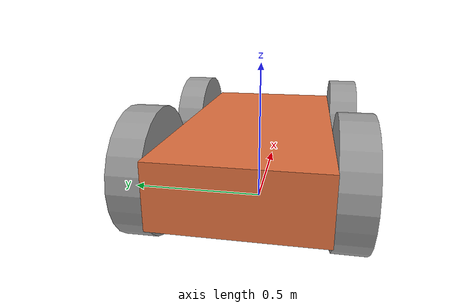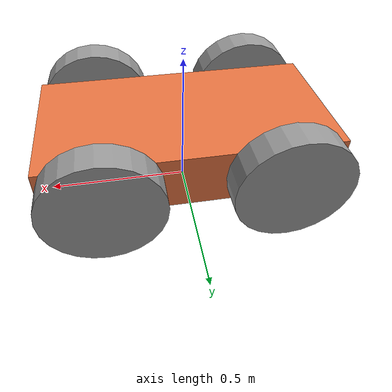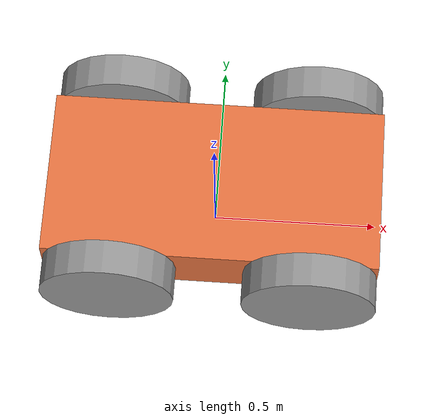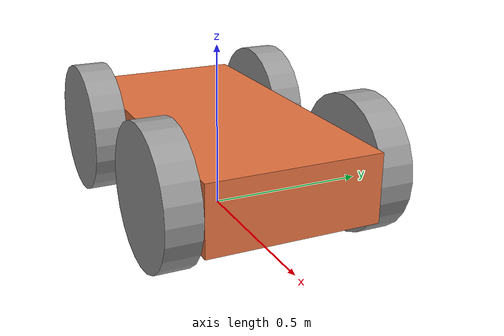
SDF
<?xml version='1.0'?>
<sdf version='1.7'>
  <model name='Submission robot'>
    <static>0</static>
    <pose>0 0 0.2 0 0 0</pose>
    <link name='chassis'>
      <inertial>
        <mass>1</mass>
        <inertia>
          <ixx>0.166667</ixx>
          <ixy>0</ixy>
          <ixz>0</ixz>
          <iyy>0.166667</iyy>
          <iyz>0</iyz>
          <izz>0.166667</izz>
        </inertia>
        <pose>0 0 0 0 -0 0</pose>
      </inertial>
      <pose> 0 0 0 0 -0 0</pose>
      <gravity>1</gravity>
      <self_collide>0</self_collide>
      <kinematic>0</kinematic>
      <enable_wind>0</enable_wind>
      <visual name='visual'>
        <pose>0 0 0 0 -0 0</pose>
        <geometry>
          <box>
            <size>1 0.5 0.2</size>
          </box>
        </geometry>
        <material>
          <lighting>1</lighting>
          <ambient>0.8 0.4 0.2 1</ambient>
          <diffuse>0.9 0.45 0.25 1</diffuse>
          <specular>0.1 0.1 0.1 1</specular>
          <emissive>0 0 0 1</emissive>
        </material>
        <transparency>0</transparency>
        <cast_shadows>1</cast_shadows>
      </visual>
      <collision name='collision'>
        <laser_retro>0</laser_retro>
        <max_contacts>10</max_contacts>
        <pose>0 0 0 0 -0 0</pose>
        <geometry>
          <box>
            <size>1 0.5 0.2</size>
          </box>
        </geometry>
        <surface>
          <friction>
            <ode>
              <mu>1</mu>
              <mu2>1</mu2>
              <fdir1>0 0 0</fdir1>
              <slip1>0</slip1>
              <slip2>0</slip2>
            </ode>
            <torsional>
              <coefficient>1</coefficient>
              <patch_radius>0</patch_radius>
              <surface_radius>0</surface_radius>
              <use_patch_radius>1</use_patch_radius>
              <ode>
                <slip>0</slip>
              </ode>
            </torsional>
          </friction>
          <bounce>
            <restitution_coefficient>0</restitution_coefficient>
            <threshold>1e+06</threshold>
          </bounce>
          <contact>
            <collide_without_contact>0</collide_without_contact>
            <collide_without_contact_bitmask>1</collide_without_contact_bitmask>
            <collide_bitmask>1</collide_bitmask>
            <ode>
              <soft_cfm>0</soft_cfm>
              <soft_erp>0.2</soft_erp>
              <kp>1e+13</kp>
              <kd>1</kd>
              <max_vel>0.01</max_vel>
              <min_depth>0</min_depth>
            </ode>
            <bullet>
              <split_impulse>1</split_impulse>
              <split_impulse_penetration_threshold>-0.01</split_impulse_penetration_threshold>
              <soft_cfm>0</soft_cfm>
              <soft_erp>0.2</soft_erp>
              <kp>1e+13</kp>
              <kd>1</kd>
            </bullet>
          </contact>
        </surface>
      </collision>
    </link>
    <link name='wheel_front_right'>
      <inertial>
        <mass>1</mass>
        <inertia>
          <ixx>0.145833</ixx>
          <ixy>0</ixy>
          <ixz>0</ixz>
          <iyy>0.145833</iyy>
          <iyz>0</iyz>
          <izz>0.125</izz>
        </inertia>
        <pose>0 0 0 0 -0 0</pose>
      </inertial>
      <pose>0.3 -0.30 0 1.5708 -0 0</pose>
      <gravity>1</gravity>
      <self_collide>0</self_collide>
      <kinematic>0</kinematic>
      <enable_wind>0</enable_wind>
      <visual name='visual'>
        <pose>0 0 0 0 -0 0</pose>
        <geometry>
          <cylinder>
            <radius>0.2</radius>
            <length>0.1</length>
          </cylinder>
        </geometry>
        <material>
          <lighting>1</lighting>
          <script>
            <uri>file://media/materials/scripts/gazebo.material</uri>
            <name>Gazebo/Grey</name>
          </script>
          <shader type='pixel'>
            <normal_map>__default__</normal_map>
          </shader>
          <ambient>0.3 0.3 0.3 1</ambient>
          <diffuse>0.7 0.7 0.7 1</diffuse>
          <specular>0.01 0.01 0.01 1</specular>
          <emissive>0 0 0 1</emissive>
        </material>
        <transparency>0</transparency>
        <cast_shadows>1</cast_shadows>
      </visual>
      <collision name='collision'>
        <laser_retro>0</laser_retro>
        <max_contacts>10</max_contacts>
        <pose>0 0 0 0 -0 0</pose>
        <geometry>
          <cylinder>
            <radius>0.2</radius>
            <length>0.1</length>
          </cylinder>
        </geometry>
        <surface>
          <friction>
            <ode>
              <mu>1</mu>
              <mu2>1</mu2>
              <fdir1>0 0 0</fdir1>
              <slip1>0</slip1>
              <slip2>0</slip2>
            </ode>
            <torsional>
              <coefficient>1</coefficient>
              <patch_radius>0</patch_radius>
              <surface_radius>0</surface_radius>
              <use_patch_radius>1</use_patch_radius>
              <ode>
                <slip>0</slip>
              </ode>
            </torsional>
          </friction>
          <bounce>
            <restitution_coefficient>0</restitution_coefficient>
            <threshold>1e+06</threshold>
          </bounce>
          <contact>
            <collide_without_contact>0</collide_without_contact>
            <collide_without_contact_bitmask>1</collide_without_contact_bitmask>
            <collide_bitmask>1</collide_bitmask>
            <ode>
              <soft_cfm>0</soft_cfm>
              <soft_erp>0.2</soft_erp>
              <kp>1e+13</kp>
              <kd>1</kd>
              <max_vel>0.01</max_vel>
              <min_depth>0</min_depth>
            </ode>
            <bullet>
              <split_impulse>1</split_impulse>
              <split_impulse_penetration_threshold>-0.01</split_impulse_penetration_threshold>
              <soft_cfm>0</soft_cfm>
              <soft_erp>0.2</soft_erp>
              <kp>1e+13</kp>
              <kd>1</kd>
            </bullet>
          </contact>
        </surface>
      </collision>
    </link>
    <link name='wheel_front_left'>
      <inertial>
        <mass>1</mass>
        <inertia>
          <ixx>0.145833</ixx>
          <ixy>0</ixy>
          <ixz>0</ixz>
          <iyy>0.145833</iyy>
          <iyz>0</iyz>
          <izz>0.125</izz>
        </inertia>
        <pose>0 0 0 0 -0 0</pose>
      </inertial>
      <pose>0.3 0.3 0 1.5708 0 0</pose>
      <gravity>1</gravity>
      <self_collide>0</self_collide>
      <kinematic>0</kinematic>
      <enable_wind>0</enable_wind>
      <visual name='visual'>
        <pose>0 0 0 0 -0 0</pose>
        <geometry>
          <cylinder>
            <radius>0.2</radius>
            <length>0.1</length>
          </cylinder>
        </geometry>
        <material>
          <lighting>1</lighting>
          <script>
            <uri>file://media/materials/scripts/gazebo.material</uri>
            <name>Gazebo/Grey</name>
          </script>
          <shader type='pixel'>
            <normal_map>__default__</normal_map>
          </shader>
          <ambient>0.3 0.3 0.3 1</ambient>
          <diffuse>0.7 0.7 0.7 1</diffuse>
          <specular>0.01 0.01 0.01 1</specular>
          <emissive>0 0 0 1</emissive>
        </material>
        <transparency>0</transparency>
        <cast_shadows>1</cast_shadows>
      </visual>
      <collision name='collision'>
        <laser_retro>0</laser_retro>
        <max_contacts>10</max_contacts>
        <pose>0 0 0 0 -0 0</pose>
        <geometry>
          <cylinder>
            <radius>0.2</radius>
            <length>0.1</length>
          </cylinder>
        </geometry>
        <surface>
          <friction>
            <ode>
              <mu>1</mu>
              <mu2>1</mu2>
              <fdir1>0 0 0</fdir1>
              <slip1>0</slip1>
              <slip2>0</slip2>
            </ode>
            <torsional>
              <coefficient>1</coefficient>
              <patch_radius>0</patch_radius>
              <surface_radius>0</surface_radius>
              <use_patch_radius>1</use_patch_radius>
              <ode>
                <slip>0</slip>
              </ode>
            </torsional>
          </friction>
          <bounce>
            <restitution_coefficient>0</restitution_coefficient>
            <threshold>1e+06</threshold>
          </bounce>
          <contact>
            <collide_without_contact>0</collide_without_contact>
            <collide_without_contact_bitmask>1</collide_without_contact_bitmask>
            <collide_bitmask>1</collide_bitmask>
            <ode>
              <soft_cfm>0</soft_cfm>
              <soft_erp>0.2</soft_erp>
              <kp>1e+13</kp>
              <kd>1</kd>
              <max_vel>0.01</max_vel>
              <min_depth>0</min_depth>
            </ode>
            <bullet>
              <split_impulse>1</split_impulse>
              <split_impulse_penetration_threshold>-0.01</split_impulse_penetration_threshold>
              <soft_cfm>0</soft_cfm>
              <soft_erp>0.2</soft_erp>
              <kp>1e+13</kp>
              <kd>1</kd>
            </bullet>
          </contact>
        </surface>
      </collision>
    </link>
    <link name='wheel_rear_left'>
      <inertial>
        <mass>1</mass>
        <inertia>
          <ixx>0.145833</ixx>
          <ixy>0</ixy>
          <ixz>0</ixz>
          <iyy>0.145833</iyy>
          <iyz>0</iyz>
          <izz>0.125</izz>
        </inertia>
        <pose>0 0 0 0 -0 0</pose>
      </inertial>
      <pose>-0.3 0.3 0 1.5708 0 0</pose>
      <gravity>1</gravity>
      <self_collide>0</self_collide>
      <kinematic>0</kinematic>
      <enable_wind>0</enable_wind>
      <visual name='visual'>
        <pose>0 0 0 0 -0 0</pose>
        <geometry>
          <cylinder>
            <radius>0.2</radius>
            <length>0.1</length>
          </cylinder>
        </geometry>
        <material>
          <lighting>1</lighting>
          <script>
            <uri>file://media/materials/scripts/gazebo.material</uri>
            <name>Gazebo/Grey</name>
          </script>
          <shader type='pixel'>
            <normal_map>__default__</normal_map>
          </shader>
          <ambient>0.3 0.3 0.3 1</ambient>
          <diffuse>0.7 0.7 0.7 1</diffuse>
          <specular>0.01 0.01 0.01 1</specular>
          <emissive>0 0 0 1</emissive>
        </material>
        <transparency>0</transparency>
        <cast_shadows>1</cast_shadows>
      </visual>
      <collision name='collision'>
        <laser_retro>0</laser_retro>
        <max_contacts>10</max_contacts>
        <pose>0 0 0 0 -0 0</pose>
        <geometry>
          <cylinder>
            <radius>0.2</radius>
            <length>0.1</length>
          </cylinder>
        </geometry>
        <surface>
          <friction>
            <ode>
              <mu>1</mu>
              <mu2>1</mu2>
              <fdir1>0 0 0</fdir1>
              <slip1>0</slip1>
              <slip2>0</slip2>
            </ode>
            <torsional>
              <coefficient>1</coefficient>
              <patch_radius>0</patch_radius>
              <surface_radius>0</surface_radius>
              <use_patch_radius>1</use_patch_radius>
              <ode>
                <slip>0</slip>
              </ode>
            </torsional>
          </friction>
          <bounce>
            <restitution_coefficient>0</restitution_coefficient>
            <threshold>1e+06</threshold>
          </bounce>
          <contact>
            <collide_without_contact>0</collide_without_contact>
            <collide_without_contact_bitmask>1</collide_without_contact_bitmask>
            <collide_bitmask>1</collide_bitmask>
            <ode>
              <soft_cfm>0</soft_cfm>
              <soft_erp>0.2</soft_erp>
              <kp>1e+13</kp>
              <kd>1</kd>
              <max_vel>0.01</max_vel>
              <min_depth>0</min_depth>
            </ode>
            <bullet>
              <split_impulse>1</split_impulse>
              <split_impulse_penetration_threshold>-0.01</split_impulse_penetration_threshold>
              <soft_cfm>0</soft_cfm>
              <soft_erp>0.2</soft_erp>
              <kp>1e+13</kp>
              <kd>1</kd>
            </bullet>
          </contact>
        </surface>
      </collision>
    </link>
    <link name='wheel_rear_right'>
      <inertial>
        <mass>1</mass>
        <inertia>
          <ixx>0.145833</ixx>
          <ixy>0</ixy>
          <ixz>0</ixz>
          <iyy>0.145833</iyy>
          <iyz>0</iyz>
          <izz>0.125</izz>
        </inertia>
        <pose>0 0 0 0 -0 0</pose>
      </inertial>
      <pose>-0.3 -0.3 0 1.5708 0 0</pose>
      <gravity>1</gravity>
      <self_collide>0</self_collide>
      <kinematic>0</kinematic>
      <enable_wind>0</enable_wind>
      <visual name='visual'>
        <pose>0 0 0 0 -0 0</pose>
        <geometry>
          <cylinder>
            <radius>0.2</radius>
            <length>0.1</length>
          </cylinder>
        </geometry>
        <material>
          <lighting>1</lighting>
          <script>
            <uri>file://media/materials/scripts/gazebo.material</uri>
            <name>Gazebo/Grey</name>
          </script>
          <shader type='pixel'>
            <normal_map>__default__</normal_map>
          </shader>
          <ambient>0.3 0.3 0.3 1</ambient>
          <diffuse>0.7 0.7 0.7 1</diffuse>
          <specular>0.01 0.01 0.01 1</specular>
          <emissive>0 0 0 1</emissive>
        </material>
        <transparency>0</transparency>
        <cast_shadows>1</cast_shadows>
      </visual>
      <collision name='collision'>
        <laser_retro>0</laser_retro>
        <max_contacts>10</max_contacts>
        <pose>0 0 0 0 -0 0</pose>
        <geometry>
          <cylinder>
            <radius>0.2</radius>
            <length>0.1</length>
          </cylinder>
        </geometry>
        <surface>
          <friction>
            <ode>
              <mu>1</mu>
              <mu2>1</mu2>
              <fdir1>0 0 0</fdir1>
              <slip1>0</slip1>
              <slip2>0</slip2>
            </ode>
            <torsional>
              <coefficient>1</coefficient>
              <patch_radius>0</patch_radius>
              <surface_radius>0</surface_radius>
              <use_patch_radius>1</use_patch_radius>
              <ode>
                <slip>0</slip>
              </ode>
            </torsional>
          </friction>
          <bounce>
            <restitution_coefficient>0</restitution_coefficient>
            <threshold>1e+06</threshold>
          </bounce>
          <contact>
            <collide_without_contact>0</collide_without_contact>
            <collide_without_contact_bitmask>1</collide_without_contact_bitmask>
            <collide_bitmask>1</collide_bitmask>
            <ode>
              <soft_cfm>0</soft_cfm>
              <soft_erp>0.2</soft_erp>
              <kp>1e+13</kp>
              <kd>1</kd>
              <max_vel>0.01</max_vel>
              <min_depth>0</min_depth>
            </ode>
            <bullet>
              <split_impulse>1</split_impulse>
              <split_impulse_penetration_threshold>-0.01</split_impulse_penetration_threshold>
              <soft_cfm>0</soft_cfm>
              <soft_erp>0.2</soft_erp>
              <kp>1e+13</kp>
              <kd>1</kd>
            </bullet>
          </contact>
        </surface>
      </collision>
    </link>
    <joint name="front_right_wheel_joint" type="revolute">
      <parent>chassis</parent>
      <child>wheel_front_right</child>
      <pose>0.3 -0.3 0 0 0 0</pose> <!-- in chassis frame -->
      <axis>
        <xyz>0 1 0</xyz> <!-- wheel spins around Y-axis -->
        <limit>
          <lower>-1e16</lower>
          <upper>1e16</upper>
          <effort>-1</effort>
          <velocity>-1</velocity>
        </limit>
        <dynamics>
          <spring_reference>0</spring_reference>
          <spring_stiffness>0</spring_stiffness>
          <damping>0</damping>
        </dynamics>
      </axis>
    </joint>
    <joint name="front_left_wheel_joint" type="revolute">
      <parent>chassis</parent>
      <child>wheel_front_left</child>
      <pose>0.3 0.3 0 0 0 0</pose> <!-- in chassis frame -->
      <axis>
        <xyz>0 1 0</xyz> <!-- wheel spins around Y-axis -->
        <limit>
          <lower>-1e16</lower>
          <upper>1e16</upper>
          <effort>-1</effort>
          <velocity>-1</velocity>
        </limit>
        <dynamics>
          <spring_reference>0</spring_reference>
          <spring_stiffness>0</spring_stiffness>
          <damping>0</damping>
        </dynamics>
      </axis>
    </joint>
    <joint name="rear_right_wheel_joint" type="revolute">
      <parent>chassis</parent>
      <child>wheel_rear_right</child>
      <pose>-0.3 -0.3 0 0 0 0</pose> <!-- in chassis frame -->
      <axis>
        <xyz>0 1 0</xyz> <!-- wheel spins around Y-axis -->
        <limit>
          <lower>-1e16</lower>
          <upper>1e16</upper>
          <effort>-1</effort>
          <velocity>-1</velocity>
        </limit>
        <dynamics>
          <spring_reference>0</spring_reference>
          <spring_stiffness>0</spring_stiffness>
          <damping>0</damping>
        </dynamics>
      </axis>
      <physics>
        <ode>
          <limit>
            <cfm>0</cfm>
            <erp>0.2</erp>
          </limit>
          <suspension>
            <cfm>0</cfm>
            <erp>0.2</erp>
          </suspension>
        </ode>
      </physics>
    </joint>
    <joint name="rear_left_wheel_joint" type="revolute">
      <parent>chassis</parent>
      <child>wheel_rear_left</child>
      <pose>-0.3 0.3 0 0 0 0</pose> <!-- in chassis frame -->
      <axis>
        <xyz>0 1 0</xyz> <!-- wheel spins around Y-axis -->
        <limit>
          <lower>-1e16</lower>
          <upper>1e16</upper>
          <effort>-1</effort>
          <velocity>-1</velocity>
        </limit>
        <dynamics>
          <spring_reference>0</spring_reference>
          <spring_stiffness>0</spring_stiffness>
          <damping>0</damping>
        </dynamics>
      </axis>
      <physics>
        <ode>
          <limit>
            <cfm>0</cfm>
            <erp>0.2</erp>
          </limit>
          <suspension>
            <cfm>0</cfm>
            <erp>0.2</erp>
          </suspension>
        </ode>
      </physics>
    </joint>
    <allow_auto_disable>1</allow_auto_disable>
  </model>
</sdf>
